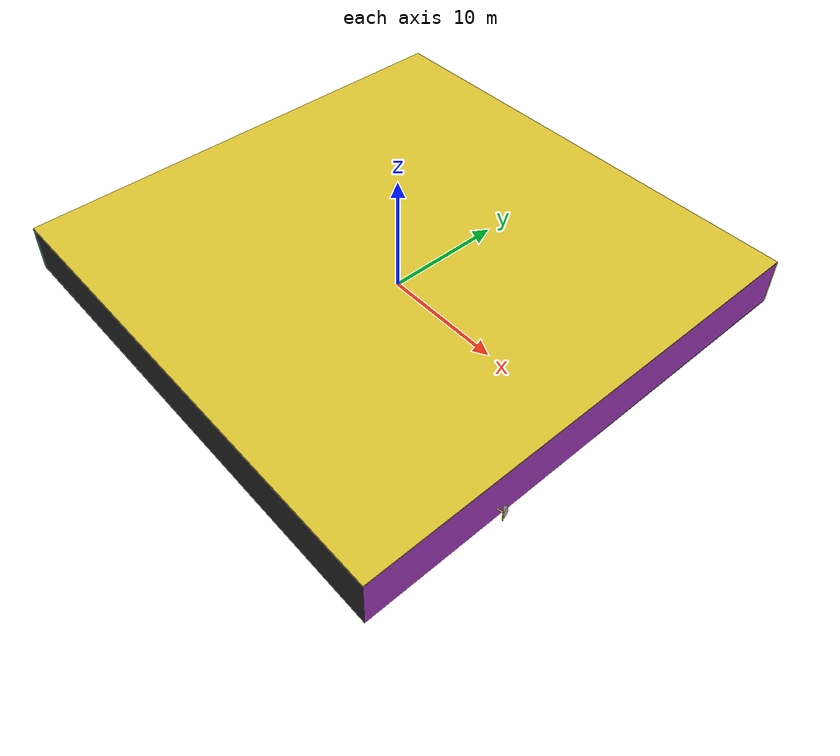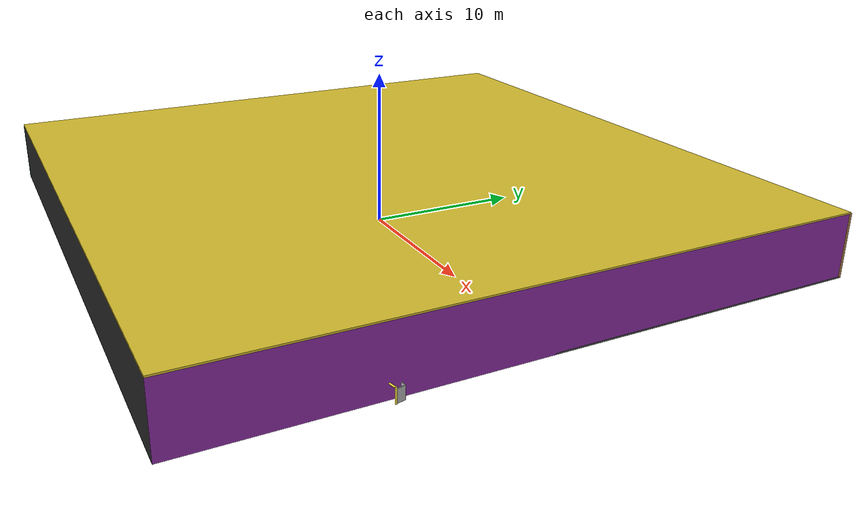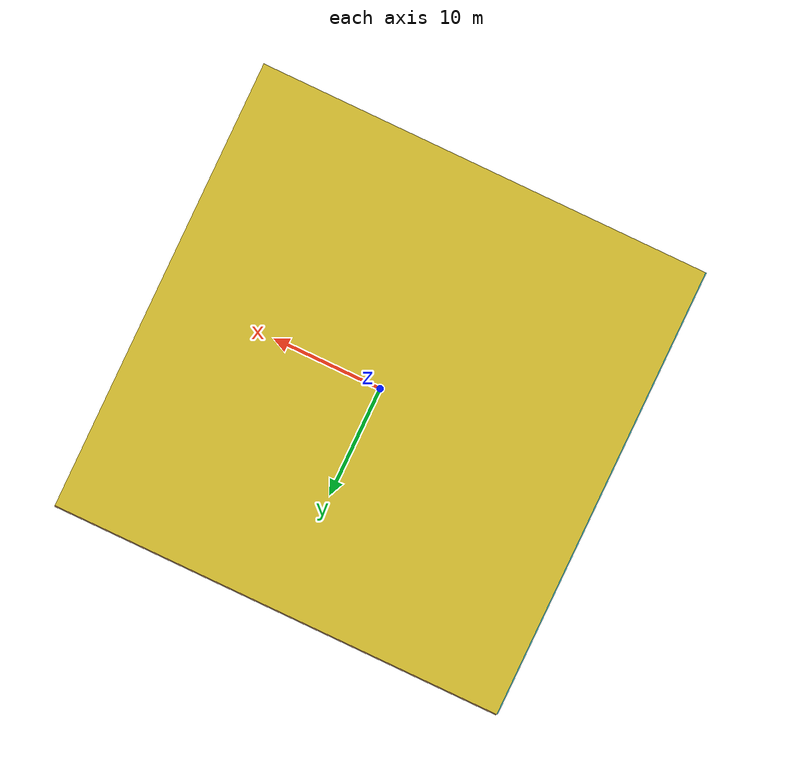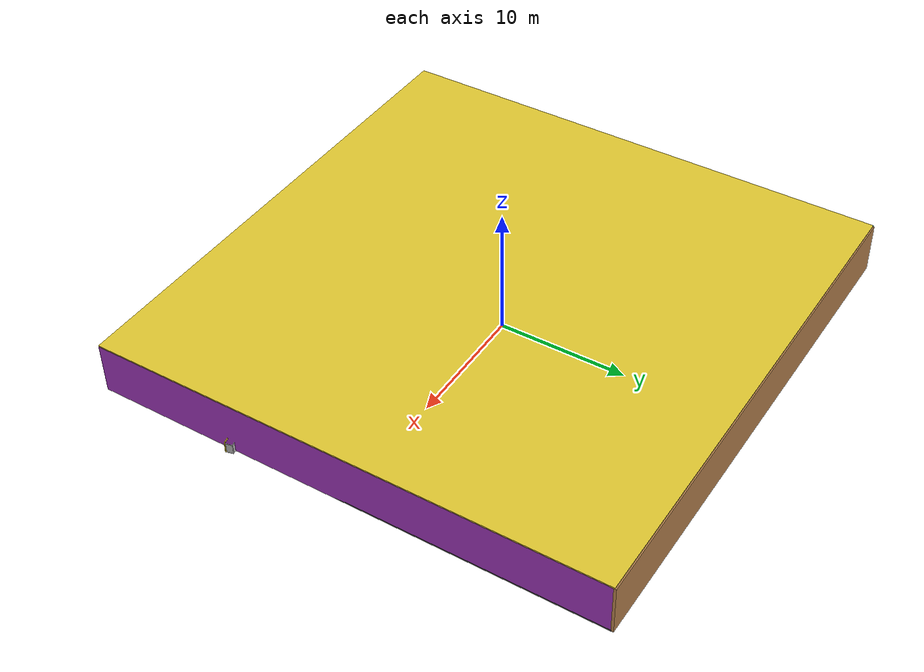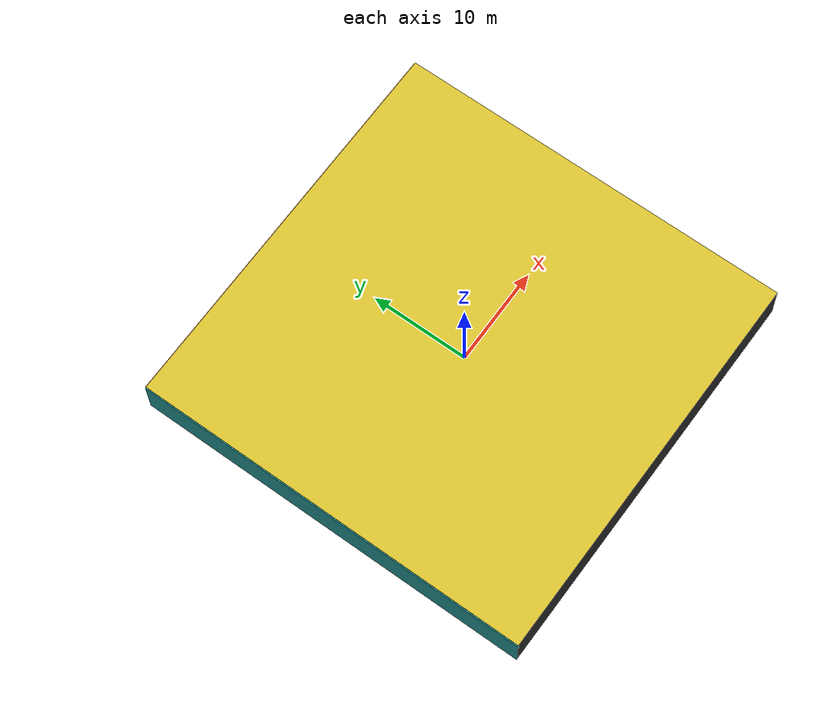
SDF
<sdf version="1.4">
 <world name="default">
  <physics type="ode">
   <max_step_size>0.001</max_step_size>
   <real_time_factor>1</real_time_factor>
   <real_time_update_rate>1000</real_time_update_rate>
   <gravity>0 0 -9.8</gravity>
  </physics>
  <scene><ambient>0.4 0.4 0.4 1</ambient><background>0.7 0.7 0.7 1</background><shadows>1</shadows></scene>
  <model name="Surrounding">
   <static>1</static>
   <link name="Ceiling">
    <collision name="Ceiling_Collision"><geometry><box><size>40 40 0.1</size></box></geometry></collision>
    <visual name="Ceiling_Visual">
     <geometry><box><size>40 40 0.1</size></box></geometry>
     <material>
      <script><uri>file://media/materials/scripts/gazebo.material</uri><name>Gazebo/ZincYellow</name></script>
     </material>
    </visual>
    <pose>0 0 4.05 0 0 0</pose>
   </link>
   <link name="Wall_South">
    <collision name="Wall_South_Collision">
     <geometry><box><size>40 0 4</size></box></geometry>
     <pose>0 0 2 0 -0 0</pose>
    </collision>
    <visual name="Wall_South_Visual">
     <pose>0 0 2 0 -0 0</pose>
     <geometry><box><size>40 0 4</size></box></geometry>
     <material>
      <script><uri>file://media/materials/scripts/gazebo.material</uri><name>Gazebo/FlatBlack</name></script>
     </material>
    </visual>
    <velocity_decay><linear>0</linear><angular>0</angular></velocity_decay>
    <pose>0 -20 0 0 -0 0</pose>
   </link>
   <link name="Wall_East">
    <collision name="Wall_21_Collision">
     <geometry><box><size>40 0 4</size></box></geometry>
     <pose>0 0 2 0 -0 0</pose>
    </collision>
    <visual name="Wall_21_Visual">
     <pose>0 0 2 0 -0 0</pose>
     <geometry><box><size>40 0 4</size></box></geometry>
     <material>
      <script><uri>file://media/materials/scripts/gazebo.material</uri><name>Gazebo/PurpleGlow</name></script>
     </material>
    </visual>
    <velocity_decay><linear>0</linear><angular>0</angular></velocity_decay>
    <pose>20 0 0 0 -0 1.5708</pose>
   </link>
   <link name="Wall_North">
    <collision name="Wall_22_Collision">
     <geometry><box><size>40 0.2 4</size></box></geometry>
     <pose>0 0 2 0 -0 0</pose>
    </collision>
    <visual name="Wall_22_Visual">
     <pose>0 0 2 0 -0 0</pose>
     <geometry><box><size>40 0.2 4</size></box></geometry>
     <material>
      <script><uri>file://media/materials/scripts/gazebo.material</uri><name>Gazebo/WoodFloor</name></script>
     </material>
    </visual>
    <velocity_decay><linear>0</linear><angular>0</angular></velocity_decay>
    <pose>0 20 0 0 -0 0</pose>
   </link>
   <link name="Wall_West">
    <collision name="Wall_23_Collision">
     <geometry><box><size>40 0.2 4</size></box></geometry>
     <pose>0 0 2 0 -0 0</pose>
    </collision>
    <visual name="Wall_23_Visual">
     <pose>0 0 2 0 -0 0</pose>
     <geometry><box><size>40 0.2 4</size></box></geometry>
     <material>
      <script><uri>file://media/materials/scripts/gazebo.material</uri><name>Gazebo/Turquoise</name></script>
     </material>
    </visual>
    <velocity_decay><linear>0</linear><angular>0</angular></velocity_decay>
    <pose>-20 0 0 0 0 -1.5708</pose>
   </link>
   <link name="Ground_link">
    <collision name="collision">
     <pose>0 0 .05 0 -0 0</pose>
     <geometry><box><size>40 40 0.1</size></box></geometry>
    </collision>
    <visual name="visual">
     <pose>0 0 .05 0 -0 0</pose>
     <geometry><box><size>40 40 0.1</size></box></geometry>
     <material>
      <script><uri>file://media/materials/scripts/gazebo.material</uri><name>Gazebo/DarkGrey</name></script>
     </material>
    </visual>
   </link>
   <static>1</static>
  </model>
  <spherical_coordinates>
   <surface_model>EARTH_WGS84</surface_model>
   <latitude_deg>0</latitude_deg>
   <longitude_deg>0</longitude_deg>
   <elevation>0</elevation>
   <heading_deg>0</heading_deg>
  </spherical_coordinates>
  <light name="lightball_0" type="diffuse">
   <diffuse>0.8 0.8 0.8 1</diffuse>
   <specular>0.2 0.2 0.2 1</specular>
   <attenuation>
    <range>100</range>
    <constant>0.7</constant>
    <linear>0.01</linear>
    <quadratic>0.001</quadratic>
   </attenuation>
   <direction>-0.5 0.1 -0.9</direction>
   <pose>-15.5400739908 -6.53700977506 1.5852929685 0 0 0</pose>
  </light>
  <light name="lightball_1" type="diffuse">
   <diffuse>0.8 0.8 0.8 1</diffuse>
   <specular>0.2 0.2 0.2 1</specular>
   <attenuation>
    <range>100</range>
    <constant>0.7</constant>
    <linear>0.01</linear>
    <quadratic>0.001</quadratic>
   </attenuation>
   <direction>-0.5 0.1 -0.9</direction>
   <pose>15.7853398802 -2.88711150754 2.9941925621 0 0 0</pose>
  </light>
  <light name="lightball_2" type="diffuse">
   <diffuse>0.8 0.8 0.8 1</diffuse>
   <specular>0.2 0.2 0.2 1</specular>
   <attenuation>
    <range>100</range>
    <constant>0.7</constant>
    <linear>0.01</linear>
    <quadratic>0.001</quadratic>
   </attenuation>
   <direction>-0.5 0.1 -0.9</direction>
   <pose>17.0413896432 -2.03847366574 2.94568092377 0 0 0</pose>
  </light>
  <light name="lightball_3" type="diffuse">
   <diffuse>0.8 0.8 0.8 1</diffuse>
   <specular>0.2 0.2 0.2 1</specular>
   <attenuation>
    <range>100</range>
    <constant>0.7</constant>
    <linear>0.01</linear>
    <quadratic>0.001</quadratic>
   </attenuation>
   <direction>-0.5 0.1 -0.9</direction>
   <pose>19.9672217059 16.6799907146 1.18579584917 0 0 0</pose>
  </light>
  <include><uri>model://cabinet</uri><pose>-18.0300417185 -16.6765334071 0 0 0 2.82173020077</pose></include>
  <include>
   <uri>model://robocup_3Dsim_goal</uri>
   <pose>-13.6258672778 -2.54613106119 0 0 0 2.55571582926</pose>
  </include>
  <include><uri>model://cabinet</uri><pose>-14.5811815255 6.28085975449 0 0 0 1.32975992361</pose></include>
  <include>
   <uri>model://textured_shapes</uri>
   <pose>-12.4073708572 -5.83183147681 0 0 0 1.95823333187</pose>
  </include>
  <include><uri>model://cabinet</uri><pose>-12.129480889 7.45127049126 0 0 0 1.01353136789</pose></include>
  <include><uri>model://cabinet</uri><pose>-9.00524562801 -17.8118854212 0 0 0 2.16638328487</pose></include>
  <include>
   <uri>model://robocup_3Dsim_goal</uri>
   <pose>-7.61390805895 -5.33575181827 0 0 0 2.34371440178</pose>
  </include>
  <include>
   <uri>model://construction_cone</uri>
   <pose>-8.36604791521 2.32482349903 0 0 0 2.77908992999</pose>
  </include>
  <include>
   <uri>model://textured_shapes</uri>
   <pose>-5.77839594451 -16.9716061189 0 0 0 2.9768829016</pose>
  </include>
  <include><uri>model://cabinet</uri><pose>-4.61477574488 -11.3650247778 0 0 0 0.840813765547</pose></include>
  <include><uri>model://table</uri><pose>5.49034028651 -7.71037751148 0 0 0 2.3899397556</pose></include>
  <include>
   <uri>model://textured_shapes</uri>
   <pose>6.22681752621 -4.97577015227 0 0 0 2.17877702684</pose>
  </include>
  <include><uri>model://cabinet</uri><pose>6.09819983122 9.5094564424 0 0 0 1.0541307214</pose></include>
  <include>
   <uri>model://construction_cone</uri>
   <pose>9.1660067321 -18.3446400759 0 0 0 2.46429385047</pose>
  </include>
  <include>
   <uri>model://robocup_3Dsim_goal</uri>
   <pose>10.2080646083 6.27184764188 0 0 0 1.7891732654</pose>
  </include>
  <include>
   <uri>model://textured_shapes</uri>
   <pose>10.3804147695 10.2004404862 0 0 0 3.08861960309</pose>
  </include>
  <include><uri>model://cabinet</uri><pose>12.5699573966 5.47552279878 0 0 0 1.63138738372</pose></include>
  <include>
   <uri>model://textured_shapes</uri>
   <pose>16.1360784739 -8.99874152266 0 0 0 2.50656614969</pose>
  </include>
  <include><uri>model://cabinet</uri><pose>15.8560756588 -0.0202490092086 0 0 0 0.363674827609</pose></include>
  <include>
   <uri>model://robocup_3Dsim_goal</uri>
   <pose>19.3992705763 -9.40016690344 0 0 0 1.79146772443</pose>
  </include>
  <include><uri>model://cabinet</uri><pose>17.6598579329 -5.26883388984 0 0 0 1.94423122839</pose></include>
  <include>
   <uri>model://textured_shapes</uri>
   <pose>18.5820858891 0.118679170605 0 0 0 0.114288830153</pose>
  </include>
  <include><uri>model://table</uri><pose>18.2910088183 6.66779409904 0 0 0 0.0366741554869</pose></include>
  <include><uri>model://table</uri><pose>18.1081384829 9.71084207495 0 0 0 0.354933190633</pose></include>
 </world>
</sdf>

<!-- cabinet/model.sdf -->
<sdf version="1.5">
  <model name="cabinet">
    <static>true</static>
    <link name="cabinet_bottom_plate">
      <inertial>
        <pose>0 0 -1 0 0 0</pose>
        <inertia>
          <ixx>2.050000</ixx>
          <ixy>0</ixy>
          <ixz>0</ixz>
          <iyy>2.050000</iyy>
          <iyz>0</iyz>
          <izz>2.050000</izz>
        </inertia>
        <mass>25.000000</mass>
      </inertial>
      <collision name="cabinet_bottom_plate_geom">
        <pose>0 0 0.010000 0 0 0</pose>
        <geometry>
          <box>
            <size>0.450000 0.450000 0.020000</size>
          </box>
        </geometry>
      </collision>
      <visual name="cabinet_bottom_plate_geom_visual">
        <pose>0 0 0.010000 0 0 0</pose>
        <geometry>
          <box>
            <size>0.450000 0.450000 0.020000</size>
          </box>
        </geometry>
        <material>
          <script>
            <uri>model://media/materials/scripts/gazebo.material</uri>
            <name>Gazebo/Wood</name>
          </script>
        </material>
      </visual>
      <collision name="cabinet_bottom_plate_geom_cabinet_back_plate">
        <pose>0.235000 0 0.510000 0 0 0</pose>
        <geometry>
          <box>
            <size>0.020000 0.450000 1.020000</size>
          </box>
        </geometry>
      </collision>
      <visual name="cabinet_bottom_plate_geom_cabinet_back_plate_visual">
        <pose>0.235000 0 0.510000 0 0 0</pose>
        <geometry>
          <box>
            <size>0.020000 0.450000 1.020000</size>
          </box>
        </geometry>
        <material>
          <script>
            <uri>model://media/materials/scripts/gazebo.material</uri>
            <name>Gazebo/Wood</name>
          </script>
        </material>
      </visual>
      <collision name="cabinet_bottom_plate_geom_cabinet_left_plate">
        <pose>0 0.235000 0.510000 0 0 0</pose>
        <geometry>
          <box>
            <size>0.450000 0.020000 1.020000</size>
          </box>
        </geometry>
      </collision>
      <visual name="cabinet_bottom_plate_geom_cabinet_left_plate_visual">
        <pose>0 0.235000 0.510000 0 0 0</pose>
        <geometry>
          <box>
            <size>0.450000 0.020000 1.020000</size>
          </box>
        </geometry>
        <material>
          <script>
            <uri>model://media/materials/scripts/gazebo.material</uri>
            <name>Gazebo/Wood</name>
          </script>
        </material>
      </visual>
      <collision name="cabinet_bottom_plate_geom_cabinet_middle_plate">
        <pose>0 0 0.510000 0 0 0</pose>
        <geometry>
          <box>
            <size>0.450000 0.450000 0.020000</size>
          </box>
        </geometry>
      </collision>
      <visual name="cabinet_bottom_plate_geom_cabinet_middle_plate_visual">
        <pose>0 0 0.510000 0 0 0</pose>
        <geometry>
          <box>
            <size>0.450000 0.450000 0.020000</size>
          </box>
        </geometry>
        <material>
          <script>
            <uri>model://media/materials/scripts/gazebo.material</uri>
            <name>Gazebo/Wood</name>
          </script>
        </material>
      </visual>
      <collision name="cabinet_bottom_plate_geom_cabinet_right_plate">
        <pose>0 -0.235000 0.510000 0 0 0</pose>
        <geometry>
          <box>
            <size>0.450000 0.020000 1.020000</size>
          </box>
        </geometry>
      </collision>
      <visual name="cabinet_bottom_plate_geom_cabinet_right_plate_visual">
        <pose>0 -0.235000 0.510000 0 0 0</pose>
        <geometry>
          <box>
            <size>0.450000 0.020000 1.020000</size>
          </box>
        </geometry>
        <material>
          <script>
            <uri>model://media/materials/scripts/gazebo.material</uri>
            <name>Gazebo/Wood</name>
          </script>
        </material>
      </visual>
      <collision name="cabinet_bottom_plate_geom_cabinet_top_plate">
        <pose>0 0 1.010000 0 0 0</pose>
        <geometry>
          <box>
            <size>0.450000 0.450000 0.020000</size>
          </box>
        </geometry>
      </collision>
      <visual name="cabinet_bottom_plate_geom_cabinet_top_plate_visual">
        <pose>0 0 1.010000 0 0 0</pose>
        <geometry>
          <box>
            <size>0.450000 0.450000 0.020000</size>
          </box>
        </geometry>
        <material>
          <script>
            <uri>model://media/materials/scripts/gazebo.material</uri>
            <name>Gazebo/Wood</name>
          </script>
        </material>
      </visual>
    </link>
  </model>
</sdf>

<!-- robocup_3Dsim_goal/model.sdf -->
<sdf version="1.5">
  <model name="robocup_3d_goal">
    <static>true</static>
    <link name="left_post">
      <pose>0 1.05 0.45 0 0 0</pose>
      <collision name="collision">
        <geometry>
          <cylinder>
            <radius>0.05</radius>
            <length>0.9</length>
          </cylinder>
        </geometry>
      </collision>
      <visual name="visual">
        <geometry>
          <cylinder>
            <radius>0.05</radius>
            <length>0.9</length>
          </cylinder>
        </geometry>
        <material>
          <script>
            <uri>file://media/materials/scripts/gazebo.material</uri>
            <name>Gazebo/ZincYellow</name>
          </script>
        </material>
      </visual>
    </link>
    <link name="left_support_horiz_lower">
      <pose>0.30 1.05 0.01 0 0 0</pose>
      <collision name="collision">
        <geometry>
          <box>
            <size>0.50 0.02 0.02</size>
          </box>
        </geometry>
      </collision>
      <visual name="visual">
        <geometry>
          <box>
            <size>0.50 0.02 0.02</size>
          </box>
        </geometry>
        <material>
          <script>
            <uri>file://media/materials/scripts/gazebo.material</uri>
            <name>Gazebo/White</name>
          </script>
        </material>
      </visual>
    </link>
    <link name="left_support_horiz_upper">
      <pose>0.30 1.05 0.79 0 0 0</pose>
      <collision name="collision">
        <geometry>
          <box>
            <size>0.50 0.02 0.02</size>
          </box>
        </geometry>
      </collision>
      <visual name="visual">
        <geometry>
          <box>
            <size>0.50 0.02 0.02</size>
          </box>
        </geometry>
        <material>
          <script>
            <uri>file://media/materials/scripts/gazebo.material</uri>
            <name>Gazebo/White</name>
          </script>
        </material>
      </visual>
    </link>
    <link name="left_support_vertical">
      <pose>0.56 1.05 0.4 0 1.5708 0</pose>
      <collision name="collision">
        <geometry>
          <box>
            <size>0.80 0.02 0.02</size>
          </box>
        </geometry>
      </collision>
      <visual name="visual">
        <geometry>
          <box>
            <size>0.80 0.02 0.02</size>
          </box>
        </geometry>
        <material>
          <script>
            <uri>file://media/materials/scripts/gazebo.material</uri>
            <name>Gazebo/White</name>
          </script>
        </material>
      </visual>
    </link>
    <link name="right_support_horiz_lower">
      <pose>0.30 -1.05 0.01 0 0 0</pose>
      <collision name="collision">
        <geometry>
          <box>
            <size>0.50 0.02 0.02</size>
          </box>
        </geometry>
      </collision>
      <visual name="visual">
        <geometry>
          <box>
            <size>0.50 0.02 0.02</size>
          </box>
        </geometry>
        <material>
          <script>
            <uri>file://media/materials/scripts/gazebo.material</uri>
            <name>Gazebo/White</name>
          </script>
        </material>
      </visual>
    </link>
    <link name="right_support_horiz_upper">
      <pose>0.30 -1.05 0.79 0 0 0</pose>
      <collision name="collision">
        <geometry>
          <box>
            <size>0.50 0.02 0.02</size>
          </box>
        </geometry>
      </collision>
      <visual name="visual">
        <geometry>
          <box>
            <size>0.50 0.02 0.02</size>
          </box>
        </geometry>
        <material>
          <script>
            <uri>file://media/materials/scripts/gazebo.material</uri>
            <name>Gazebo/White</name>
          </script>
        </material>
      </visual>
    </link>
    <link name="right_support_vertical">
      <pose>0.56 -1.05 0.4 0 1.5708 0</pose>
      <collision name="collision">
        <geometry>
          <box>
            <size>0.80 0.02 0.02</size>
          </box>
        </geometry>
      </collision>
      <visual name="visual">
        <geometry>
          <box>
            <size>0.80 0.02 0.02</size>
          </box>
        </geometry>
        <material>
          <script>
            <uri>file://media/materials/scripts/gazebo.material</uri>
            <name>Gazebo/White</name>
          </script>
        </material>
      </visual>
    </link>
    <link name="center_support_horiz_lower">
      <pose>0.56 0 0.01 0 1.5708 0</pose>
      <collision name="collision">
        <geometry>
          <box>
            <size>0.02 2.08 0.02</size>
          </box>
        </geometry>
      </collision>
      <visual name="visual">
        <geometry>
          <box>
            <size>0.02 2.08 0.02</size>
          </box>
        </geometry>
        <material>
          <script>
            <uri>file://media/materials/scripts/gazebo.material</uri>
            <name>Gazebo/White</name>
          </script>
        </material>
      </visual>
    </link>
    <link name="center_support_horiz_upper">
      <pose>0.56 0 0.79 0 1.5708 0</pose>
      <collision name="collision">
        <geometry>
          <box>
            <size>0.02 2.08 0.02</size>
          </box>
        </geometry>
      </collision>
      <visual name="visual">
        <geometry>
          <box>
            <size>0.02 2.08 0.02</size>
          </box>
        </geometry>
        <material>
          <script>
            <uri>file://media/materials/scripts/gazebo.material</uri>
            <name>Gazebo/White</name>
          </script>
        </material>
      </visual>
    </link>
    <link name="right_post">
      <pose>0 -1.05 0.45 0 0 0</pose>
      <collision name="collision">
        <geometry>
          <cylinder>
            <radius>0.05</radius>
            <length>0.9</length>
          </cylinder>
        </geometry>
      </collision>
      <visual name="visual">
        <geometry>
          <cylinder>
            <radius>0.05</radius>
            <length>0.9</length>
          </cylinder>
        </geometry>
        <material>
          <script>
            <uri>file://media/materials/scripts/gazebo.material</uri>
            <name>Gazebo/ZincYellow</name>
          </script>
        </material>
      </visual>
    </link>
    <link name="crossbar">
      <pose>0 0 0.85 1.57 1.57 0</pose>
      <collision name="collision">
        <geometry>
          <cylinder>
            <radius>0.05</radius>
            <length>2.0</length>
          </cylinder>
        </geometry>
      </collision>
      <visual name="visual">
        <geometry>
          <cylinder>
            <radius>0.05</radius>
            <length>2.0</length>
          </cylinder>
        </geometry>
        <material>
          <script>
            <uri>file://media/materials/scripts/gazebo.material</uri>
            <name>Gazebo/ZincYellow</name>
          </script>
        </material>
      </visual>
    </link>
    <link name="center_net">
      <pose>0.56 0 0.40 0 0 0</pose>
      <collision name="collision">
        <geometry>
          <box>
            <size>0.01 2.1 0.80</size>
          </box>
        </geometry>
      </collision>
      <visual name="visual">
        <geometry>
          <box>
            <size>0.01 2.1 0.80</size>
          </box>
        </geometry>
        <material>
          <script>
            <uri>model://../model_source/models/robocup09_spl_field/materials/scripts/</uri>
            <uri>model://../model_source/models/robocup09_spl_field/materials/textures/</uri>
            <name>RoboCup/Net</name>
          </script>
        </material>
      </visual>
    </link>
    <link name="left_net">
      <pose>0.30 1.05 0.40 0 0 0</pose>
      <collision name="collision">
        <geometry>
          <box>
            <size>0.50 0.01 0.76</size>
          </box>
        </geometry>
      </collision>
      <visual name="visual">
        <geometry>
          <box>
            <size>0.50 0.01 0.76</size>
          </box>
        </geometry>
        <material>
          <script>
            <uri>model://../model_source/models/robocup09_spl_field/materials/scripts/</uri>
            <uri>model://../model_source/models/robocup09_spl_field/materials/textures/</uri>
            <name>RoboCup/Net</name>
          </script>
        </material>
      </visual>
    </link>
    <link name="right_net">
      <pose>0.30 -1.05 0.40 0 0 0</pose>
      <collision name="collision">
        <geometry>
          <box>
            <size>0.50 0.01 0.76</size>
          </box>
        </geometry>
      </collision>
      <visual name="visual">
        <geometry>
          <box>
            <size>0.50 0.01 0.76</size>
          </box>
        </geometry>
        <material>
          <script>
            <uri>model://../model_source/models/robocup09_spl_field/materials/scripts/</uri>
            <uri>model://../model_source/models/robocup09_spl_field/materials/textures/</uri>
            <name>RoboCup/Net</name>
          </script>
        </material>
      </visual>
    </link>
  </model>
</sdf>

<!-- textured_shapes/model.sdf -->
<sdf version="1.6">
  <model name="textured_shapes">
    <pose>0 0 0.5 0 0 0</pose>
    <link name="box">
      <pose>0 -1.5 0 0 0 0</pose>
      <collision name="collision">
        <geometry>
          <box>
            <size>1 1 1</size>
          </box>
        </geometry>
      </collision>
      <visual name="visual">
        <geometry>
          <box>
            <size>1 1 1</size>
          </box>
        </geometry>
        <material>
          <script>
            <uri>model://../model_source/models/textured_shapes/materials/scripts</uri>
            <uri>model://../model_source/models/textured_shapes/materials/textures</uri>
            <name>TexturedShape/Squares</name>
          </script>
        </material>
      </visual>
    </link>
    <link name="sphere">
      <collision name="collision">
        <geometry>
          <sphere>
            <radius>0.5</radius>
          </sphere>
        </geometry>
      </collision>
      <visual name="visual">
        <geometry>
          <sphere>
            <radius>0.5</radius>
          </sphere>
        </geometry>
        <material>
          <script>
            <uri>model://../model_source/models/textured_shapes/materials/scripts</uri>
            <uri>model://../model_source/models/textured_shapes/materials/textures</uri>
            <name>TexturedShape/Squares</name>
          </script>
        </material>
      </visual>
    </link>
    <link name="cylinder">
      <pose>0 1.5 0 0 0 0</pose>
      <collision name="collision">
        <geometry>
          <cylinder>
            <radius>0.5</radius>
            <length>1</length>
          </cylinder>
        </geometry>
      </collision>
      <visual name="visual">
        <geometry>
          <cylinder>
            <radius>0.5</radius>
            <length>1</length>
          </cylinder>
        </geometry>
        <material>
          <script>
            <uri>model://../model_source/models/textured_shapes/materials/scripts</uri>
            <uri>model://../model_source/models/textured_shapes/materials/textures</uri>
            <name>TexturedShape/Squares</name>
          </script>
        </material>
      </visual>
    </link>
  </model>
</sdf>

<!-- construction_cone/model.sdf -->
<sdf version="1.5">
  <model name="Construction Cone">
    <link name="link">
      <collision name="collision">
        <geometry>
          <mesh>
            <scale>10 10 10</scale>
            <uri>file://isr-testbed/construction_cone/meshes/construction_cone.dae</uri>
          </mesh>
        </geometry>
      </collision>
      <visual name="visual">
        <geometry>
          <mesh>
            <scale>10 10 10</scale>
            <uri>file://isr-testbed/construction_cone/meshes/construction_cone.dae</uri>
          </mesh>
        </geometry>
      </visual>
    </link>
  </model>
</sdf>

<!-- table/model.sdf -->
<sdf version="1.5">
  <model name="table">
    <static>true</static>
    <link name="link">
      <collision name="surface">
        <pose>0 0 1.0 0 0 0</pose>
        <geometry>
          <box>
            <size>1.5 0.8 0.03</size>
          </box>
        </geometry>
        <surface>
          <friction>
            <ode>
              <mu>0.6</mu>
              <mu2>0.6</mu2>
            </ode>
          </friction>
        </surface>
      </collision>
      <visual name="visual1">
        <pose>0 0 1.0 0 0 0</pose>
        <geometry>
          <box>
            <size>1.5 0.8 0.03</size>
          </box>
        </geometry>
        <material>
          <script>
            <uri>model://media/materials/scripts/gazebo.material</uri>
            <name>Gazebo/Wood</name>
          </script>
        </material>
      </visual>
      <collision name="front_left_leg">
        <pose>0.68 0.38 0.5 0 0 0</pose>
        <geometry>
          <cylinder>
            <radius>0.02</radius>
            <length>1.0</length>
          </cylinder>
        </geometry>
      </collision>
      <visual name="front_left_leg">
        <pose>0.68 0.38 0.5 0 0 0</pose>
        <geometry>
          <cylinder>
            <radius>0.02</radius>
            <length>1.0</length>
          </cylinder>
        </geometry>
        <material>
          <script>
            <uri>model://media/materials/scripts/gazebo.material</uri>
            <name>Gazebo/Grey</name>
          </script>
        </material>
      </visual>
      <collision name="front_right_leg">
        <pose>0.68 -0.38 0.5 0 0 0</pose>
        <geometry>
          <cylinder>
            <radius>0.02</radius>
            <length>1.0</length>
          </cylinder>
        </geometry>
      </collision>
      <visual name="front_right_leg">
        <pose>0.68 -0.38 0.5 0 0 0</pose>
        <geometry>
          <cylinder>
            <radius>0.02</radius>
            <length>1.0</length>
          </cylinder>
        </geometry>
        <material>
          <script>
            <uri>model://media/materials/scripts/gazebo.material</uri>
            <name>Gazebo/Grey</name>
          </script>
        </material>
      </visual>
      <collision name="back_right_leg">
        <pose>-0.68 -0.38 0.5 0 0 0</pose>
        <geometry>
          <cylinder>
            <radius>0.02</radius>
            <length>1.0</length>
          </cylinder>
        </geometry>
      </collision>
      <visual name="back_right_leg">
        <pose>-0.68 -0.38 0.5 0 0 0</pose>
        <geometry>
          <cylinder>
            <radius>0.02</radius>
            <length>1.0</length>
          </cylinder>
        </geometry>
        <material>
          <script>
            <uri>model://media/materials/scripts/gazebo.material</uri>
            <name>Gazebo/Grey</name>
          </script>
        </material>
      </visual>
      <collision name="back_left_leg">
        <pose>-0.68 0.38 0.5 0 0 0</pose>
        <geometry>
          <cylinder>
            <radius>0.02</radius>
            <length>1.0</length>
          </cylinder>
        </geometry>
      </collision>
      <visual name="back_left_leg">
        <pose>-0.68 0.38 0.5 0 0 0</pose>
        <geometry>
          <cylinder>
            <radius>0.02</radius>
            <length>1.0</length>
          </cylinder>
        </geometry>
        <material>
          <script>
            <uri>model://media/materials/scripts/gazebo.material</uri>
            <name>Gazebo/Grey</name>
          </script>
        </material>
      </visual>
    </link>
  </model>
</sdf>
